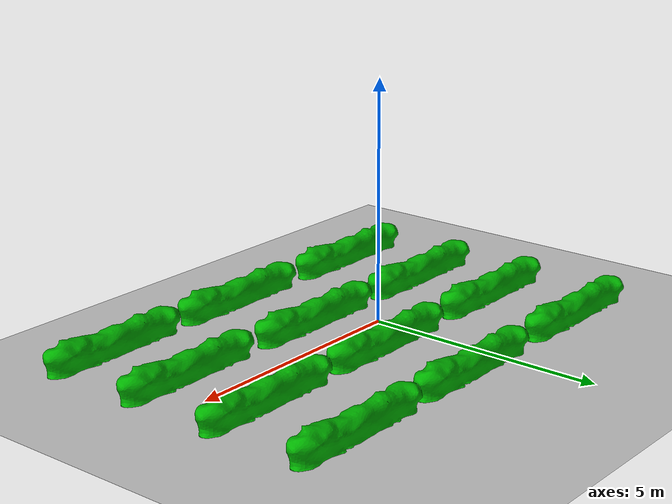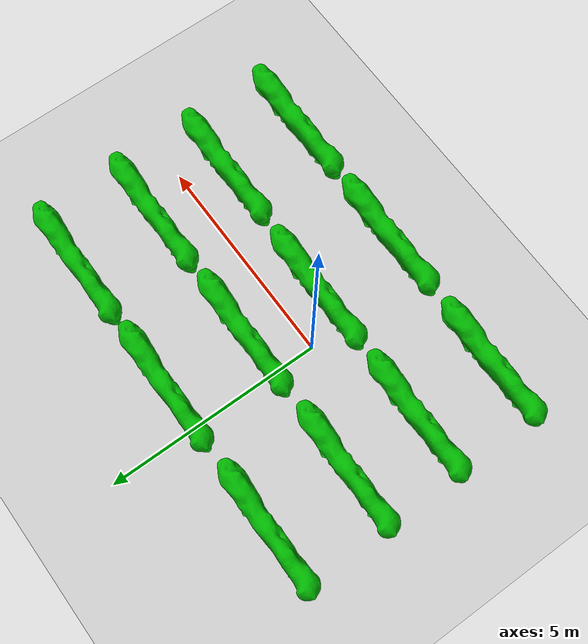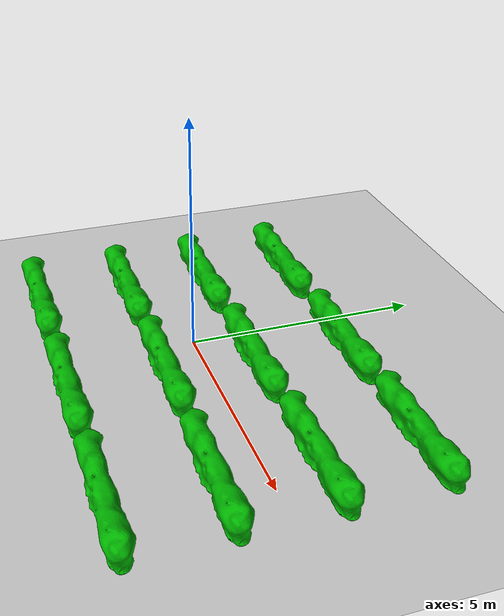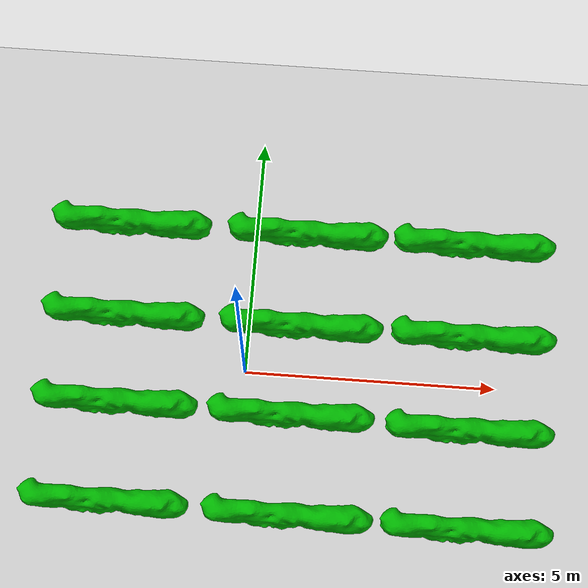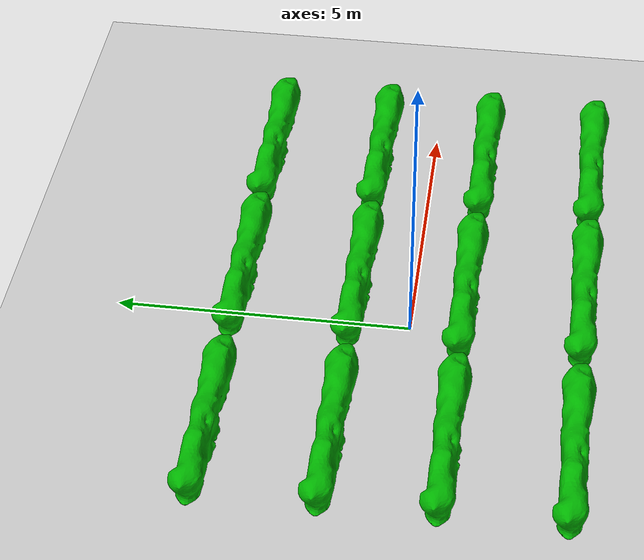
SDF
<sdf version="1.6">
 <world name="default">
  <light name="sun" type="directional">
   <pose>0 0 10 0 -0 0</pose>
   <diffuse>0.8 0.8 0.8 1</diffuse>
   <specular>0.2 0.2 0.2 1</specular>
   <attenuation>
    <range>1000</range>
    <constant>0.9</constant>
    <linear>0.01</linear>
    <quadratic>0.001</quadratic>
   </attenuation>
   <direction>-0.5 0.1 -0.9</direction>
  </light>
  <model name="ground_plane">
   <static>1</static>
   <link name="link">
    <collision name="collision">
     <geometry><plane><normal>0 0 1</normal><size>100 100</size></plane></geometry>
     <surface><friction><ode><mu>100</mu><mu2>50</mu2></ode></friction></surface>
    </collision>
    <visual name="visual">
     <cast_shadows>0</cast_shadows>
     <geometry><plane><normal>0 0 1</normal><size>100 100</size></plane></geometry>
     <material>
      <script><uri>file://media/materials/scripts/gazebo.material</uri><name>Gazebo/Grey</name></script>
     </material>
    </visual>
    <velocity_decay><linear>0</linear><angular>0</angular></velocity_decay>
   </link>
  </model>
  <physics name="default_physics" default="0" type="ode">
   <max_step_size>0.001</max_step_size>
   <real_time_factor>1</real_time_factor>
   <real_time_update_rate>1000</real_time_update_rate>
  </physics>
  <scene><ambient>0.4 0.4 0.4 1</ambient><background>0.7 0.7 0.7 1</background><shadows>1</shadows></scene>
  <spherical_coordinates>
   <surface_model>EARTH_WGS84</surface_model>
   <latitude_deg>0</latitude_deg>
   <longitude_deg>0</longitude_deg>
   <elevation>0</elevation>
   <heading_deg>0</heading_deg>
  </spherical_coordinates>
  <model name="Bush">
   <link name="link">
    <collision name="collision">
     <geometry><mesh><scale>1 1 1</scale><uri>model://plot/meshes/plot.stl</uri></mesh></geometry>
    </collision>
    <inertial>
     <mass>1</mass>
     <inertia>
      <ixx>0.166667</ixx>
      <ixy>0</ixy>
      <ixz>0</ixz>
      <iyy>0.166667</iyy>
      <iyz>0</iyz>
      <izz>0.166667</izz>
     </inertia>
    </inertial>
    <visual name="visual">
     <geometry><mesh><scale>1 1 1</scale><uri>model://plot/meshes/plot.stl</uri></mesh></geometry>
     <material>
      <script><uri>file://media/materials/scripts/gazebo.material</uri><name>Gazebo/Grey</name></script>
      <ambient>0.2 0.9 0.1 1</ambient>
      <diffuse>0 0.7 0 1</diffuse>
      <specular>0.01 0.01 0.01 1</specular>
      <emissive>0 0 0 1</emissive>
     </material>
    </visual>
    <velocity_decay><linear>0</linear><angular>0</angular></velocity_decay>
   </link>
   <pose>1.03942 -2.8643 0.30633 3e-06 -9e-06 -0.003792</pose>
   <static>0</static>
  </model>
  <model name="Bush_0">
   <link name="link">
    <collision name="collision">
     <geometry><mesh><scale>1 1 1</scale><uri>model://plot/meshes/plot.stl</uri></mesh></geometry>
    </collision>
    <inertial>
     <mass>1</mass>
     <inertia>
      <ixx>0.166667</ixx>
      <ixy>0</ixy>
      <ixz>0</ixz>
      <iyy>0.166667</iyy>
      <iyz>0</iyz>
      <izz>0.166667</izz>
     </inertia>
    </inertial>
    <visual name="visual">
     <geometry><mesh><scale>1 1 1</scale><uri>model://plot/meshes/plot.stl</uri></mesh></geometry>
     <material>
      <script><uri>file://media/materials/scripts/gazebo.material</uri><name>Gazebo/Grey</name></script>
      <ambient>0.2 0.9 0.1 1</ambient>
      <diffuse>0 0.7 0 1</diffuse>
      <specular>0.01 0.01 0.01 1</specular>
      <emissive>0 0 0 1</emissive>
     </material>
    </visual>
    <velocity_decay><linear>0</linear><angular>0</angular></velocity_decay>
   </link>
   <pose>4.48658 -2.89369 0.306337 6e-06 -0 -0.003785</pose>
   <static>0</static>
  </model>
  <model name="Bush_1">
   <link name="link">
    <collision name="collision">
     <geometry><mesh><scale>1 1 1</scale><uri>model://plot/meshes/plot.stl</uri></mesh></geometry>
    </collision>
    <inertial>
     <mass>1</mass>
     <inertia>
      <ixx>0.166667</ixx>
      <ixy>0</ixy>
      <ixz>0</ixz>
      <iyy>0.166667</iyy>
      <iyz>0</iyz>
      <izz>0.166667</izz>
     </inertia>
    </inertial>
    <visual name="visual">
     <geometry><mesh><scale>1 1 1</scale><uri>model://plot/meshes/plot.stl</uri></mesh></geometry>
     <material>
      <script><uri>file://media/materials/scripts/gazebo.material</uri><name>Gazebo/Grey</name></script>
      <ambient>0.2 0.9 0.1 1</ambient>
      <diffuse>0 0.7 0 1</diffuse>
      <specular>0.01 0.01 0.01 1</specular>
      <emissive>0 0 0 1</emissive>
     </material>
    </visual>
    <velocity_decay><linear>0</linear><angular>0</angular></velocity_decay>
   </link>
   <pose>-2.50957 -2.82219 0.306339 1.5e-05 0 -0.003796</pose>
   <static>0</static>
  </model>
  <model name="Bush_2">
   <link name="link">
    <collision name="collision">
     <geometry><mesh><scale>1 1 1</scale><uri>model://plot/meshes/plot.stl</uri></mesh></geometry>
    </collision>
    <inertial>
     <mass>1</mass>
     <inertia>
      <ixx>0.166667</ixx>
      <ixy>0</ixy>
      <ixz>0</ixz>
      <iyy>0.166667</iyy>
      <iyz>0</iyz>
      <izz>0.166667</izz>
     </inertia>
    </inertial>
    <visual name="visual">
     <geometry><mesh><scale>1 1 1</scale><uri>model://plot/meshes/plot.stl</uri></mesh></geometry>
     <material>
      <script><uri>file://media/materials/scripts/gazebo.material</uri><name>Gazebo/Grey</name></script>
      <ambient>0.2 0.9 0.1 1</ambient>
      <diffuse>0 0.7 0 1</diffuse>
      <specular>0.01 0.01 0.01 1</specular>
      <emissive>0 0 0 1</emissive>
     </material>
    </visual>
    <velocity_decay><linear>0</linear><angular>0</angular></velocity_decay>
   </link>
   <pose>-2.5171 -0.832571 0.306328 6e-06 -1e-05 -0.003807</pose>
   <static>0</static>
  </model>
  <model name="Bush_3">
   <link name="link">
    <collision name="collision">
     <geometry><mesh><scale>1 1 1</scale><uri>model://plot/meshes/plot.stl</uri></mesh></geometry>
    </collision>
    <inertial>
     <mass>1</mass>
     <inertia>
      <ixx>0.166667</ixx>
      <ixy>0</ixy>
      <ixz>0</ixz>
      <iyy>0.166667</iyy>
      <iyz>0</iyz>
      <izz>0.166667</izz>
     </inertia>
    </inertial>
    <visual name="visual">
     <geometry><mesh><scale>1 1 1</scale><uri>model://plot/meshes/plot.stl</uri></mesh></geometry>
     <material>
      <script><uri>file://media/materials/scripts/gazebo.material</uri><name>Gazebo/Grey</name></script>
      <ambient>0.2 0.9 0.1 1</ambient>
      <diffuse>0 0.7 0 1</diffuse>
      <specular>0.01 0.01 0.01 1</specular>
      <emissive>0 0 0 1</emissive>
     </material>
    </visual>
    <velocity_decay><linear>0</linear><angular>0</angular></velocity_decay>
   </link>
   <pose>0.967371 -0.860702 0.30633 3e-06 -9e-06 -0.003802</pose>
   <static>0</static>
  </model>
  <model name="Bush_4">
   <link name="link">
    <collision name="collision">
     <geometry><mesh><scale>1 1 1</scale><uri>model://plot/meshes/plot.stl</uri></mesh></geometry>
    </collision>
    <inertial>
     <mass>1</mass>
     <inertia>
      <ixx>0.166667</ixx>
      <ixy>0</ixy>
      <ixz>0</ixz>
      <iyy>0.166667</iyy>
      <iyz>0</iyz>
      <izz>0.166667</izz>
     </inertia>
    </inertial>
    <visual name="visual">
     <geometry><mesh><scale>1 1 1</scale><uri>model://plot/meshes/plot.stl</uri></mesh></geometry>
     <material>
      <script><uri>file://media/materials/scripts/gazebo.material</uri><name>Gazebo/Grey</name></script>
      <ambient>0.2 0.9 0.1 1</ambient>
      <diffuse>0 0.7 0 1</diffuse>
      <specular>0.01 0.01 0.01 1</specular>
      <emissive>0 0 0 1</emissive>
     </material>
    </visual>
    <velocity_decay><linear>0</linear><angular>0</angular></velocity_decay>
   </link>
   <pose>4.48613 -0.932434 0.306328 6e-06 -1e-05 -0.003803</pose>
   <static>0</static>
  </model>
  <model name="Bush_5">
   <link name="link">
    <collision name="collision">
     <geometry><mesh><scale>1 1 1</scale><uri>model://plot/meshes/plot.stl</uri></mesh></geometry>
    </collision>
    <inertial>
     <mass>1</mass>
     <inertia>
      <ixx>0.166667</ixx>
      <ixy>0</ixy>
      <ixz>0</ixz>
      <iyy>0.166667</iyy>
      <iyz>0</iyz>
      <izz>0.166667</izz>
     </inertia>
    </inertial>
    <visual name="visual">
     <geometry><mesh><scale>1 1 1</scale><uri>model://plot/meshes/plot.stl</uri></mesh></geometry>
     <material>
      <script><uri>file://media/materials/scripts/gazebo.material</uri><name>Gazebo/Grey</name></script>
      <ambient>0.2 0.9 0.1 1</ambient>
      <diffuse>0 0.7 0 1</diffuse>
      <specular>0.01 0.01 0.01 1</specular>
      <emissive>0 0 0 1</emissive>
     </material>
    </visual>
    <velocity_decay><linear>0</linear><angular>0</angular></velocity_decay>
   </link>
   <pose>-2.54869 1.00483 0.306332 2e-06 8e-06 -0.003806</pose>
   <static>0</static>
  </model>
  <model name="Bush_6">
   <link name="link">
    <collision name="collision">
     <geometry><mesh><scale>1 1 1</scale><uri>model://plot/meshes/plot.stl</uri></mesh></geometry>
    </collision>
    <inertial>
     <mass>1</mass>
     <inertia>
      <ixx>0.166667</ixx>
      <ixy>0</ixy>
      <ixz>0</ixz>
      <iyy>0.166667</iyy>
      <iyz>0</iyz>
      <izz>0.166667</izz>
     </inertia>
    </inertial>
    <visual name="visual">
     <geometry><mesh><scale>1 1 1</scale><uri>model://plot/meshes/plot.stl</uri></mesh></geometry>
     <material>
      <script><uri>file://media/materials/scripts/gazebo.material</uri><name>Gazebo/Grey</name></script>
      <ambient>0.2 0.9 0.1 1</ambient>
      <diffuse>0 0.7 0 1</diffuse>
      <specular>0.01 0.01 0.01 1</specular>
      <emissive>0 0 0 1</emissive>
     </material>
    </visual>
    <velocity_decay><linear>0</linear><angular>0</angular></velocity_decay>
   </link>
   <pose>1.04286 1.00483 0.306332 2e-06 8e-06 -0.003808</pose>
   <static>0</static>
  </model>
  <model name="Bush_7">
   <link name="link">
    <collision name="collision">
     <geometry><mesh><scale>1 1 1</scale><uri>model://plot/meshes/plot.stl</uri></mesh></geometry>
    </collision>
    <inertial>
     <mass>1</mass>
     <inertia>
      <ixx>0.166667</ixx>
      <ixy>0</ixy>
      <ixz>0</ixz>
      <iyy>0.166667</iyy>
      <iyz>0</iyz>
      <izz>0.166667</izz>
     </inertia>
    </inertial>
    <visual name="visual">
     <geometry><mesh><scale>1 1 1</scale><uri>model://plot/meshes/plot.stl</uri></mesh></geometry>
     <material>
      <script><uri>file://media/materials/scripts/gazebo.material</uri><name>Gazebo/Grey</name></script>
      <ambient>0.2 0.9 0.1 1</ambient>
      <diffuse>0 0.7 0 1</diffuse>
      <specular>0.01 0.01 0.01 1</specular>
      <emissive>0 0 0 1</emissive>
     </material>
    </visual>
    <velocity_decay><linear>0</linear><angular>0</angular></velocity_decay>
   </link>
   <pose>4.50535 1.00483 0.306332 2e-06 8e-06 -0.00381</pose>
   <static>0</static>
  </model>
  <model name="Bush_8">
   <link name="link">
    <collision name="collision">
     <geometry><mesh><scale>1 1 1</scale><uri>model://plot/meshes/plot.stl</uri></mesh></geometry>
    </collision>
    <inertial>
     <mass>1</mass>
     <inertia>
      <ixx>0.166667</ixx>
      <ixy>0</ixy>
      <ixz>0</ixz>
      <iyy>0.166667</iyy>
      <iyz>0</iyz>
      <izz>0.166667</izz>
     </inertia>
    </inertial>
    <visual name="visual">
     <geometry><mesh><scale>1 1 1</scale><uri>model://plot/meshes/plot.stl</uri></mesh></geometry>
     <material>
      <script><uri>file://media/materials/scripts/gazebo.material</uri><name>Gazebo/Grey</name></script>
      <ambient>0.2 0.9 0.1 1</ambient>
      <diffuse>0 0.7 0 1</diffuse>
      <specular>0.01 0.01 0.01 1</specular>
      <emissive>0 0 0 1</emissive>
     </material>
    </visual>
    <velocity_decay><linear>0</linear><angular>0</angular></velocity_decay>
   </link>
   <pose>-2.59063 3.00341 0.306339 1.3e-05 -1e-06 -0.003819</pose>
   <static>0</static>
  </model>
  <model name="Bush_9">
   <link name="link">
    <collision name="collision">
     <geometry><mesh><scale>1 1 1</scale><uri>model://plot/meshes/plot.stl</uri></mesh></geometry>
    </collision>
    <inertial>
     <mass>1</mass>
     <inertia>
      <ixx>0.166667</ixx>
      <ixy>0</ixy>
      <ixz>0</ixz>
      <iyy>0.166667</iyy>
      <iyz>0</iyz>
      <izz>0.166667</izz>
     </inertia>
    </inertial>
    <visual name="visual">
     <geometry><mesh><scale>1 1 1</scale><uri>model://plot/meshes/plot.stl</uri></mesh></geometry>
     <material>
      <script><uri>file://media/materials/scripts/gazebo.material</uri><name>Gazebo/Grey</name></script>
      <ambient>0.2 0.9 0.1 1</ambient>
      <diffuse>0 0.7 0 1</diffuse>
      <specular>0.01 0.01 0.01 1</specular>
      <emissive>0 0 0 1</emissive>
     </material>
    </visual>
    <velocity_decay><linear>0</linear><angular>0</angular></velocity_decay>
   </link>
   <pose>1.04289 3.00483 0.306332 2e-06 8e-06 -0.003815</pose>
   <static>0</static>
  </model>
  <model name="Bush_10">
   <link name="link">
    <collision name="collision">
     <geometry><mesh><scale>1 1 1</scale><uri>model://plot/meshes/plot.stl</uri></mesh></geometry>
    </collision>
    <inertial>
     <mass>1</mass>
     <inertia>
      <ixx>0.166667</ixx>
      <ixy>0</ixy>
      <ixz>0</ixz>
      <iyy>0.166667</iyy>
      <iyz>0</iyz>
      <izz>0.166667</izz>
     </inertia>
    </inertial>
    <visual name="visual">
     <geometry><mesh><scale>1 1 1</scale><uri>model://plot/meshes/plot.stl</uri></mesh></geometry>
     <material>
      <script><uri>file://media/materials/scripts/gazebo.material</uri><name>Gazebo/Grey</name></script>
      <ambient>0.2 0.9 0.1 1</ambient>
      <diffuse>0 0.7 0 1</diffuse>
      <specular>0.01 0.01 0.01 1</specular>
      <emissive>0 0 0 1</emissive>
     </material>
    </visual>
    <velocity_decay><linear>0</linear><angular>0</angular></velocity_decay>
   </link>
   <pose>4.46685 3.00483 0.306332 2e-06 8e-06 -0.003817</pose>
   <static>0</static>
  </model>
  <gravity>0 0 -9.8</gravity>
  <magnetic_field>6e-06 2.3e-05 -4.2e-05</magnetic_field>
  <atmosphere type="adiabatic"/>
  <audio><device>default</device></audio>
 </world>
</sdf>
